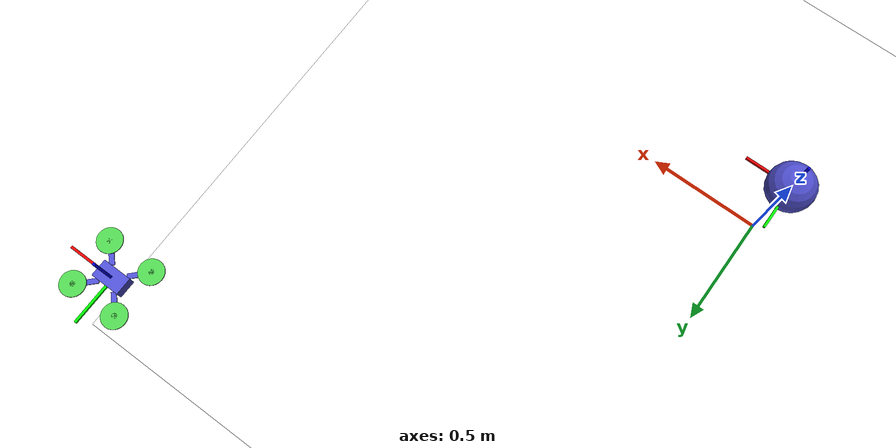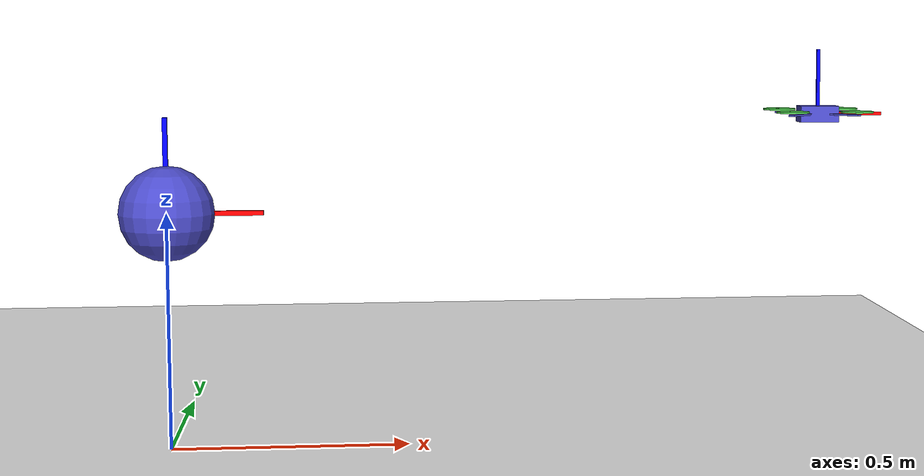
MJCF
<mujoco model="quadrotor0">
        <compiler inertiafromgeom="true" coordinate="local"/>
        <option	timestep="0.00125" gravity="0 0 -9.81" density="1" viscosity="1e-5" />
        <worldbody>
                <geom name="floor" pos="0 0 0" size="2 2 .2" type="plane"  conaffinity="1" rgba="1 1 1 1" condim="3"/>
                <body name="quadrotor" pos="1.8 1.8 0.6" >
                        <geom name="core" type="box" pos="0 0 0" quat = "1. 0. 0. 0" size="0.06 0.035 0.025"  rgba="0.3 0.3 0.8 1" mass = ".4"/>

                        <geom name="a00" type="box" pos=".071 0.071 0.0" size="0.05 0.01 0.0025"  quat = ".924 0.0 0.0 0.383" rgba="0.3 0.3 0.8 1" mass = "0.1"/>
                        <geom name="a10" type="box" pos=".071 -0.071 0.0" size="0.05 0.01 0.0025"  quat = ".383 0.0 0.0 0.924" rgba="0.3 0.3 0.8 1" mass = "0.1"/>
                        <geom name="a20" type="box" pos="-0.071 -0.071 0.0" size="0.05 0.01 0.0025"  quat = "-.383 0.0 0.0 0.924" rgba="0.3 0.3 0.8 1" mass = "0.1"/>
                        <geom name="a30" type="box" pos="-.071 0.071 0.0" size="0.05 0.01 0.0025"  quat = ".924 0.0 0.0 -0.383" rgba="0.3 0.3 0.8 1" mass = "0.1"/>

                        <joint name="root"   type="free" damping="0" armature="0" pos="0 0 0" />

                        <!-- Motor sites to attach motor actuators -->
                        <site name="motor0" type="cylinder" pos=" 0.1  0.1 0.01"  size="0.01 0.0025"  quat = "1.0 0.0 0.0 0." rgba="0.3 0.8 0.3 1"/>
                        <site name="motor1" type="cylinder" pos=" 0.1 -0.1 0.01"  size="0.01 0.0025"  quat = "1.0 0.0 0.0 0." rgba="0.3 0.8 0.3 1"/>
                        <site name="motor2" type="cylinder" pos="-0.1 -0.1 0.01"  size="0.01 0.0025"  quat = "1.0 0.0 0.0 0." rgba="0.3 0.8 0.3 1"/>
                        <site name="motor3" type="cylinder" pos="-0.1  0.1 0.01"  size="0.01 0.0025"  quat = "1.0 0.0 0.0 0." rgba="0.3 0.8 0.3 1"/>

                        <!-- Thruster geometries for collisions since site's are excluded from collision checking -->
                        <geom name="thruster0" type="cylinder" pos=" 0.1  0.1  0.01" size="0.05 0.0025"  quat = "1.0 0.0 0.0 0." rgba="0.3 0.8 0.3 1" mass = "0.1"/>
                        <geom name="thruster1" type="cylinder" pos=" 0.1 -0.1  0.01" size="0.05 0.0025"  quat = "1.0 0.0 0.0 0." rgba="0.3 0.8 0.3 1" mass = "0.1"/>
                        <geom name="thruster2" type="cylinder" pos="-0.1 -0.1  0.01" size="0.05 0.0025"  quat = "1.0 0.0 0.0 0." rgba="0.3 0.8 0.3 1" mass = "0.1"/>
                        <geom name="thruster3" type="cylinder" pos="-0.1  0.1  0.01" size="0.05 0.0025"  quat = "1.0 0.0 0.0 0." rgba="0.3 0.8 0.3 1" mass = "0.1"/>

                        <!-- Visualization of the coordinate frame -->
                        <site name="qcX" type="box" pos="0.1 0.0 0.0" size="0.1 0.005 0.005"  quat = " 1.000  0.0  0.0    0."     rgba="1 0 0 1" />
                        <site name="qcY" type="box" pos="0.0 0.1 0.0" size="0.1 0.005 0.005"  quat = " 0.707  0.0  0.0    0.707"  rgba="0 1 0 1" />
                        <site name="qcZ" type="box" pos="0.0 0.0 0.1" size="0.1 0.005 0.005"  quat = "-0.707  0.0  0.707  0."     rgba="0 0 1 1" />
                </body>
                <!-- Define the ball -->
                <body name="ball" pos="0 0 0.5">
                        <geom type="sphere" size="0.1" mass="0.1" rgba="0.3 0.3 0.8 1"/>
                        <joint name="xAxis1" type="slide" axis="1 0 0" />
                        <joint name="yAxis1" type="slide" axis="0 1 0" />
                        <joint name="zAxis1" type="slide" axis="0 0 1" />

                        <!-- Visualization of the coordinate frame -->
                        <site name="qcX1" type="box" pos="0.1 0.0 0.0" size="0.1 0.005 0.005"  quat = " 1.000  0.0  0.0    0."     rgba="1 0 0 1" />
                        <site name="qcY1" type="box" pos="0.0 0.1 0.0" size="0.1 0.005 0.005"  quat = " 0.707  0.0  0.0    0.707"  rgba="0 1 0 1" />
                        <site name="qcZ1" type="box" pos="0.0 0.0 0.1" size="0.1 0.005 0.005"  quat = "-0.707  0.0  0.707  0."     rgba="0 0 1 1" />
                </body>
        </worldbody>
        <actuator>
                <motor ctrllimited="true" ctrlrange="0.0 4.0" gear="0  0. 1. 0. 0. -0.1" site="motor0"/>
                <motor ctrllimited="true" ctrlrange="0.0 4.0" gear="0  0. 1. 0. 0.  0.1" site="motor1"/>
                <motor ctrllimited="true" ctrlrange="0.0 4.0" gear="0  0. 1. 0. 0. -0.1" site="motor2"/>
                <motor ctrllimited="true" ctrlrange="0.0 4.0" gear="0  0. 1. 0. 0.  0.1" site="motor3"/>
                <motor ctrllimited="true" ctrlrange="-1.0 1.0" gear="1" joint="xAxis1"/>
                <motor ctrllimited="true" ctrlrange="-1.0 1.0" gear="1" joint="yAxis1"/>
                <motor ctrllimited="true" ctrlrange="-1.0 1.0" gear="1" joint="zAxis1"/>
        </actuator>
</mujoco>
